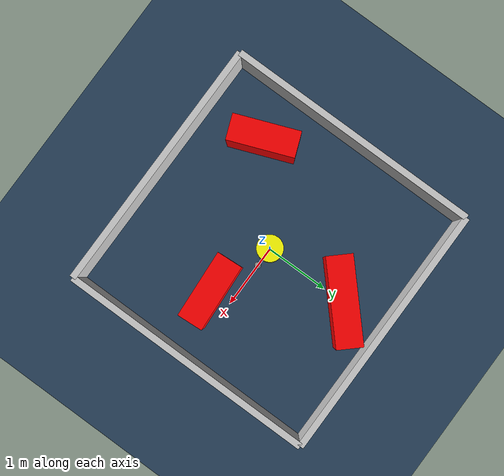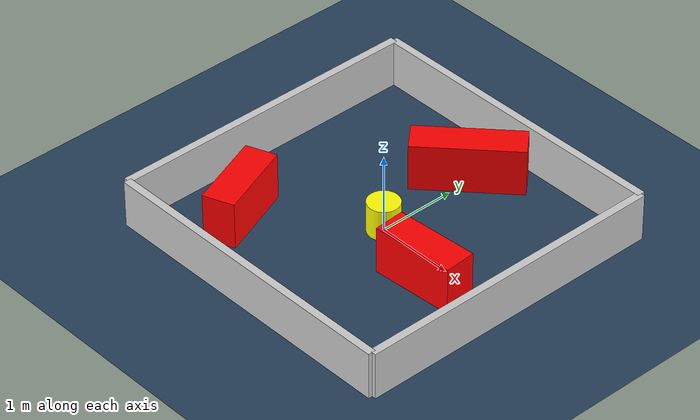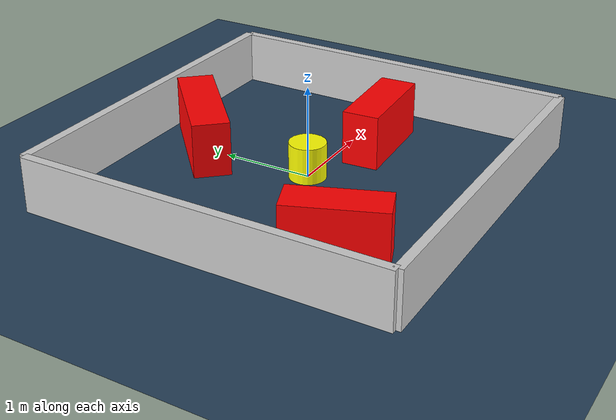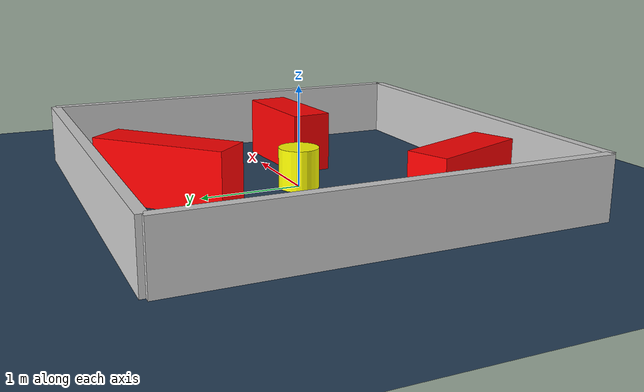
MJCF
<?xml version="1.0" ?>
<mujoco model="generated_environment">
  <option timestep="0.01" integrator="RK4" cone="elliptic"/>
  <default>
    <geom density="1"/>
  </default>
  <asset>
    <texture builtin="gradient" height="3072" rgb1="0.3 0.5 0.7" rgb2="0 0 0" type="skybox" width="512"/>
    <texture builtin="checker" height="300" mark="edge" markrgb="0.8 0.8 0.8" name="groundplane" rgb1="0.2 0.3 0.4" rgb2="0.1 0.2 0.3" type="2d" width="300"/>
    <material name="groundplane" reflectance="0.2" texrepeat="5 5" texture="groundplane" texuniform="true"/>
    <material name="robot" rgba="0.0 1.0 0.0 1"/>
  </asset>
  <worldbody>
    <light dir="0 0 -1" directional="true" pos="0 0 1.5"/>
    <geom condim="4" friction="1.0 0.005 0.001" material="groundplane" name="floor" size="0 0 0.05" type="plane"/>
    <body name="walls">
      <geom name="wall_1" condim="4" pos="-2.0 0.0 0.3" rgba="0.800000011920929 0.800000011920929 0.800000011920929 1.0" size="0.05 2.0 0.3" type="box"/>
      <geom name="wall_2" condim="4" pos="2.0 0.0 0.3" rgba="0.800000011920929 0.800000011920929 0.800000011920929 1.0" size="0.05 2.0 0.3" type="box"/>
      <geom name="wall_3" condim="4" pos="0.0 -2.0 0.3" rgba="0.800000011920929 0.800000011920929 0.800000011920929 1.0" size="2.0 0.05 0.3" type="box"/>
      <geom name="wall_4" condim="4" pos="0.0 2.0 0.3" rgba="0.800000011920929 0.800000011920929 0.800000011920929 1.0" size="2.0 0.05 0.3" type="box"/>
    </body>
    <body name="robot">
      <joint name="joint_x" type="slide" pos="0 0 0" axis="1 0 0"/>
      <joint name="joint_y" type="slide" pos="0 0 0" axis="0 1 0"/>
      <geom name="robot" type="sphere" pos="0.3 0.0 0.2" size="0.05" mass="5." friction="1.0 0.005 0.0001" condim="4" rgba="0.5 0.5 0.5 1.0"/>
      <site name="sensor_ball"/>
    </body>
    <body name="obstacle_movable_1">
      <geom name="obstacle_movable_1" condim="4" pos="0.0 0.0 0.2" euler="0 0 0.0" friction="1.0 0.005 0.001" rgba="1.0 1.0 0.0 1.0" size="0.2 0.2 0.0" type="cylinder" mass="0.1"/>
      <joint type="free"/>
    </body>
    <body name="obstacle_2_static">
      <geom name="obstacle_2_static" condim="4" pos="1.0012221731082336 -0.3230319444905614 0.3" euler="0 0 183.81813689676972" friction="1.0 0.005 0.001" rgba="1 0 0 1" size="0.5284201635085417 0.2 0.3" type="box"/>
    </body>
    <body name="obstacle_3_static">
      <geom name="obstacle_3_static" condim="4" pos="-1.2366113118645683 -1.0221350259553104 0.3" euler="0 0 111.32937151111523" friction="1.0 0.005 0.001" rgba="1 0 0 1" size="0.5128221345040666 0.2 0.3" type="box"/>
    </body>
    <body name="obstacle_4_static">
      <geom name="obstacle_4_static" condim="4" pos="-0.011551618461973723 1.3048005835656256 0.3" euler="0 0 222.5941275959707" friction="1.0 0.005 0.001" rgba="1 0 0 1" size="0.668408376444614 0.2 0.3" type="box"/>
    </body>
  </worldbody>
  <actuator>
    <motor name="actuator_x" joint="joint_x" gear="1" ctrlrange="-1 1"/>
    <motor name="actuator_y" joint="joint_y" gear="1" ctrlrange="-1 1"/>
  </actuator>
</mujoco>
